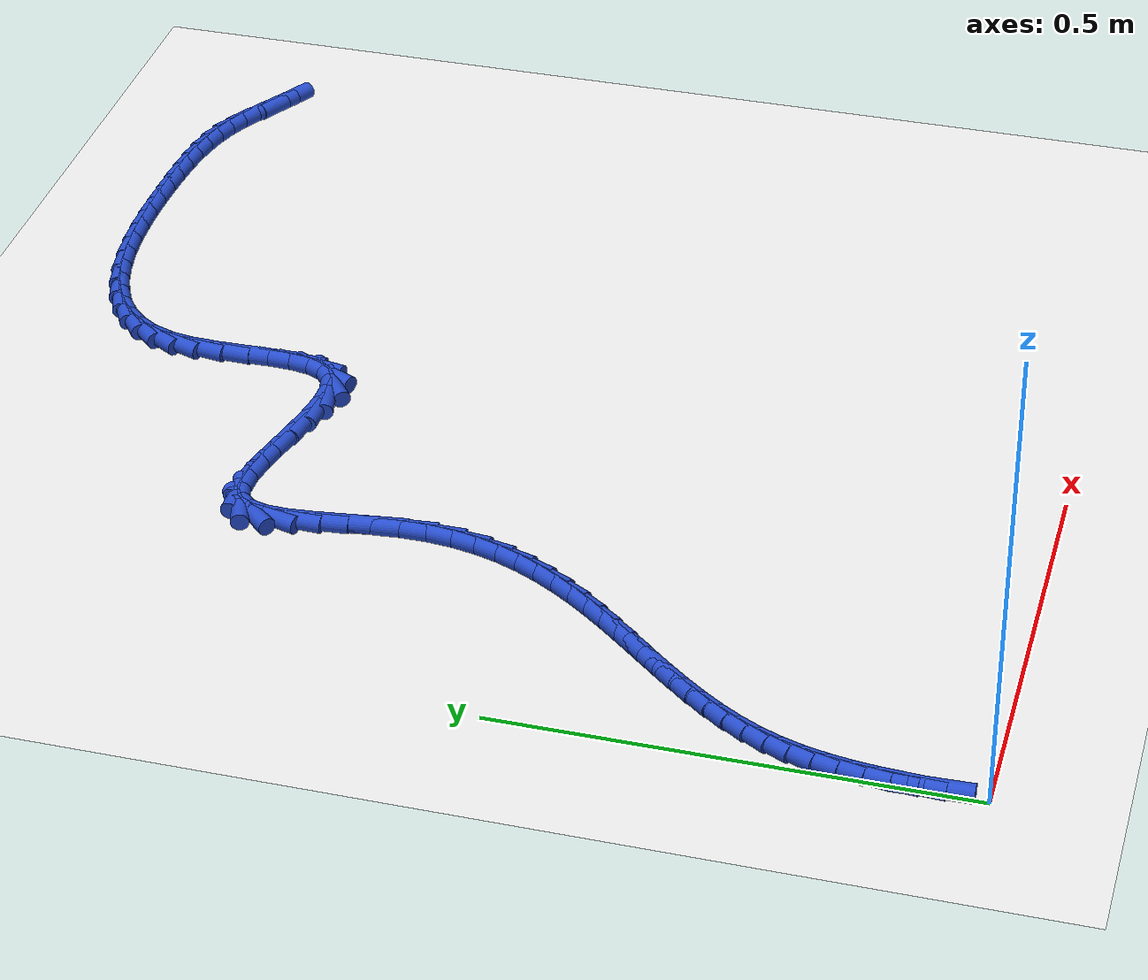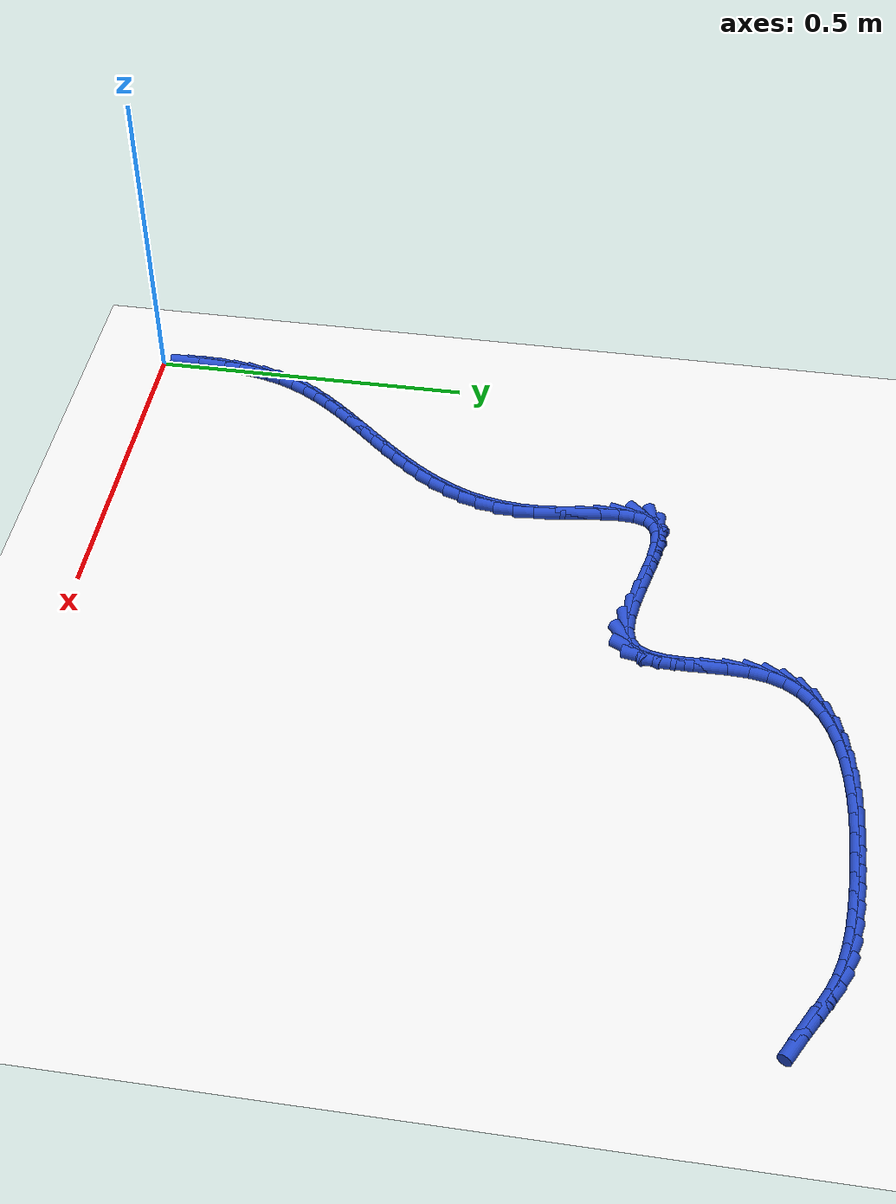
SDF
<sdf version="1.6">
 <world name="default">
  <model name="ground_plane">
   <static>1</static>
   <link name="link">
    <collision name="collision">
     <geometry><plane><normal>0 0 1</normal><size>100 100</size></plane></geometry>
     <surface><friction><ode><mu>100</mu><mu2>50</mu2></ode></friction></surface>
    </collision>
    <visual name="visual">
     <cast_shadows>0</cast_shadows>
     <geometry><plane><normal>0 0 1</normal><size>100 100</size></plane></geometry>
     <material>
      <script><uri>file://media/materials/scripts/gazebo.material</uri><name>Gazebo/WhiteGlow</name></script>
     </material>
    </visual>
   </link>
  </model>
  <model name="line">
   <link name="link_3">
    <pose>-0.0008582868187953234 0.07962597044792816 0.01 0 1.57 1.5166113316829752</pose>
    <collision name="collision">
     <geometry><cylinder><radius>0.01</radius><length>0.08</length></cylinder></geometry>
    </collision>
    <visual name="visual">
     <material>
      <script><name>Gazebo/Blue</name><uri>file://media/materials/scripts/gazebo.material</uri></script>
     </material>
     <geometry><cylinder><radius>0.01</radius><length>0.08</length></cylinder></geometry>
    </visual>
   </link>
   <link name="link_4">
    <pose>0.0005741074411347346 0.10603535074692257 0.01 0 1.57 1.4701500390305338</pose>
    <collision name="collision">
     <geometry><cylinder><radius>0.01</radius><length>0.08</length></cylinder></geometry>
    </collision>
    <visual name="visual">
     <material>
      <script><name>Gazebo/Blue</name><uri>file://media/materials/scripts/gazebo.material</uri></script>
     </material>
     <geometry><cylinder><radius>0.01</radius><length>0.08</length></cylinder></geometry>
    </visual>
   </link>
   <link name="link_5">
    <pose>0.0032087198866388926 0.13212384906799385 0.01 0 1.57 1.4142644829705298</pose>
    <collision name="collision">
     <geometry><cylinder><radius>0.01</radius><length>0.08</length></cylinder></geometry>
    </collision>
    <visual name="visual">
     <material>
      <script><name>Gazebo/Blue</name><uri>file://media/materials/scripts/gazebo.material</uri></script>
     </material>
     <geometry><cylinder><radius>0.01</radius><length>0.08</length></cylinder></geometry>
    </visual>
   </link>
   <link name="link_6">
    <pose>0.007251334469203062 0.15773871917948254 0.01 0 1.57 1.3481876121108494</pose>
    <collision name="collision">
     <geometry><cylinder><radius>0.01</radius><length>0.08</length></cylinder></geometry>
    </collision>
    <visual name="visual">
     <material>
      <script><name>Gazebo/Blue</name><uri>file://media/materials/scripts/gazebo.material</uri></script>
     </material>
     <geometry><cylinder><radius>0.01</radius><length>0.08</length></cylinder></geometry>
    </visual>
   </link>
   <link name="link_7">
    <pose>0.012907735140313155 0.18272721484972923 0.01 0 1.57 1.2712814550850546</pose>
    <collision name="collision">
     <geometry><cylinder><radius>0.01</radius><length>0.08</length></cylinder></geometry>
    </collision>
    <visual name="visual">
     <material>
      <script><name>Gazebo/Blue</name><uri>file://media/materials/scripts/gazebo.material</uri></script>
     </material>
     <geometry><cylinder><radius>0.01</radius><length>0.08</length></cylinder></geometry>
    </visual>
   </link>
   <link name="link_8">
    <pose>0.020383705851455082 0.20693658984707458 0.01 0 1.57 1.1843087087483664</pose>
    <collision name="collision">
     <geometry><cylinder><radius>0.01</radius><length>0.08</length></cylinder></geometry>
    </collision>
    <visual name="visual">
     <material>
      <script><name>Gazebo/Blue</name><uri>file://media/materials/scripts/gazebo.material</uri></script>
     </material>
     <geometry><cylinder><radius>0.01</radius><length>0.08</length></cylinder></geometry>
    </visual>
   </link>
   <link name="link_9">
    <pose>0.02986229865533491 0.23022809304915437 0.01 0 1.57 1.1003042329888846</pose>
    <collision name="collision">
     <geometry><cylinder><radius>0.01</radius><length>0.08</length></cylinder></geometry>
    </collision>
    <visual name="visual">
     <material>
      <script><name>Gazebo/Blue</name><uri>file://media/materials/scripts/gazebo.material</uri></script>
     </material>
     <geometry><cylinder><radius>0.01</radius><length>0.08</length></cylinder></geometry>
    </visual>
   </link>
   <link name="link_10">
    <pose>0.04125550205563197 0.25262985618097883 0.01 0 1.57 1.028621788836884</pose>
    <collision name="collision">
     <geometry><cylinder><radius>0.01</radius><length>0.08</length></cylinder></geometry>
    </collision>
    <visual name="visual">
     <material>
      <script><name>Gazebo/Blue</name><uri>file://media/materials/scripts/gazebo.material</uri></script>
     </material>
     <geometry><cylinder><radius>0.01</radius><length>0.08</length></cylinder></geometry>
    </visual>
   </link>
   <link name="link_11">
    <pose>0.05429713827067271 0.2742797007326057 0.01 0 1.57 0.9698861675975531</pose>
    <collision name="collision">
     <geometry><cylinder><radius>0.01</radius><length>0.08</length></cylinder></geometry>
    </collision>
    <visual name="visual">
     <material>
      <script><name>Gazebo/Blue</name><uri>file://media/materials/scripts/gazebo.material</uri></script>
     </material>
     <geometry><cylinder><radius>0.01</radius><length>0.08</length></cylinder></geometry>
    </visual>
   </link>
   <link name="link_12">
    <pose>0.0687179088689758 0.29531736945177367 0.01 0 1.57 0.9239835486995319</pose>
    <collision name="collision">
     <geometry><cylinder><radius>0.01</radius><length>0.08</length></cylinder></geometry>
    </collision>
    <visual name="visual">
     <material>
      <script><name>Gazebo/Blue</name><uri>file://media/materials/scripts/gazebo.material</uri></script>
     </material>
     <geometry><cylinder><radius>0.01</radius><length>0.08</length></cylinder></geometry>
    </visual>
   </link>
   <link name="link_13">
    <pose>0.08424851541906003 0.3158826050862217 0.01 0 1.57 0.8905015614335788</pose>
    <collision name="collision">
     <geometry><cylinder><radius>0.01</radius><length>0.08</length></cylinder></geometry>
    </collision>
    <visual name="visual">
     <material>
      <script><name>Gazebo/Blue</name><uri>file://media/materials/scripts/gazebo.material</uri></script>
     </material>
     <geometry><cylinder><radius>0.01</radius><length>0.08</length></cylinder></geometry>
    </visual>
   </link>
   <link name="link_14">
    <pose>0.10061965948944408 0.33611515038368833 0.01 0 1.57 0.8689524665879704</pose>
    <collision name="collision">
     <geometry><cylinder><radius>0.01</radius><length>0.08</length></cylinder></geometry>
    </collision>
    <visual name="visual">
     <material>
      <script><name>Gazebo/Blue</name><uri>file://media/materials/scripts/gazebo.material</uri></script>
     </material>
     <geometry><cylinder><radius>0.01</radius><length>0.08</length></cylinder></geometry>
    </visual>
   </link>
   <link name="link_15">
    <pose>0.11756204264864668 0.3561547480919124 0.01 0 1.57 0.8589161430688081</pose>
    <collision name="collision">
     <geometry><cylinder><radius>0.01</radius><length>0.08</length></cylinder></geometry>
    </collision>
    <visual name="visual">
     <material>
      <script><name>Gazebo/Blue</name><uri>file://media/materials/scripts/gazebo.material</uri></script>
     </material>
     <geometry><cylinder><radius>0.01</radius><length>0.08</length></cylinder></geometry>
    </visual>
   </link>
   <link name="link_16">
    <pose>0.13480636646518654 0.3761411409586327 0.01 0 1.57 0.8601175002567543</pose>
    <collision name="collision">
     <geometry><cylinder><radius>0.01</radius><length>0.08</length></cylinder></geometry>
    </collision>
    <visual name="visual">
     <material>
      <script><name>Gazebo/Blue</name><uri>file://media/materials/scripts/gazebo.material</uri></script>
     </material>
     <geometry><cylinder><radius>0.01</radius><length>0.08</length></cylinder></geometry>
    </visual>
   </link>
   <link name="link_17">
    <pose>0.15208333250758235 0.39621407173158774 0.01 0 1.57 0.8724551031376572</pose>
    <collision name="collision">
     <geometry><cylinder><radius>0.01</radius><length>0.08</length></cylinder></geometry>
    </collision>
    <visual name="visual">
     <material>
      <script><name>Gazebo/Blue</name><uri>file://media/materials/scripts/gazebo.material</uri></script>
     </material>
     <geometry><cylinder><radius>0.01</radius><length>0.08</length></cylinder></geometry>
    </visual>
   </link>
   <link name="link_18">
    <pose>0.1691236423443529 0.41651328315851643 0.01 0 1.57 0.8959914375994646</pose>
    <collision name="collision">
     <geometry><cylinder><radius>0.01</radius><length>0.08</length></cylinder></geometry>
    </collision>
    <visual name="visual">
     <material>
      <script><name>Gazebo/Blue</name><uri>file://media/materials/scripts/gazebo.material</uri></script>
     </material>
     <geometry><cylinder><radius>0.01</radius><length>0.08</length></cylinder></geometry>
    </visual>
   </link>
   <link name="link_19">
    <pose>0.18565799754401682 0.43717851798715757 0.01 0 1.57 0.9309068245905547</pose>
    <collision name="collision">
     <geometry><cylinder><radius>0.01</radius><length>0.08</length></cylinder></geometry>
    </collision>
    <visual name="visual">
     <material>
      <script><name>Gazebo/Blue</name><uri>file://media/materials/scripts/gazebo.material</uri></script>
     </material>
     <geometry><cylinder><radius>0.01</radius><length>0.08</length></cylinder></geometry>
    </visual>
   </link>
   <link name="link_20">
    <pose>0.20141709967509303 0.4583495189652499 0.01 0 1.57 0.9774118242091248</pose>
    <collision name="collision">
     <geometry><cylinder><radius>0.01</radius><length>0.08</length></cylinder></geometry>
    </collision>
    <visual name="visual">
     <material>
      <script><name>Gazebo/Blue</name><uri>file://media/materials/scripts/gazebo.material</uri></script>
     </material>
     <geometry><cylinder><radius>0.01</radius><length>0.08</length></cylinder></geometry>
    </visual>
   </link>
   <link name="link_21">
    <pose>0.2161316503061 0.480166028840532 0.01 0 1.57 1.0356099639411565</pose>
    <collision name="collision">
     <geometry><cylinder><radius>0.01</radius><length>0.08</length></cylinder></geometry>
    </collision>
    <visual name="visual">
     <material>
      <script><name>Gazebo/Blue</name><uri>file://media/materials/scripts/gazebo.material</uri></script>
     </material>
     <geometry><cylinder><radius>0.01</radius><length>0.08</length></cylinder></geometry>
    </visual>
   </link>
   <link name="link_22">
    <pose>0.22953235100555655 0.5027677903607427 0.01 0 1.57 1.1053082781964698</pose>
    <collision name="collision">
     <geometry><cylinder><radius>0.01</radius><length>0.08</length></cylinder></geometry>
    </collision>
    <visual name="visual">
     <material>
      <script><name>Gazebo/Blue</name><uri>file://media/materials/scripts/gazebo.material</uri></script>
     </material>
     <geometry><cylinder><radius>0.01</radius><length>0.08</length></cylinder></geometry>
    </visual>
   </link>
   <link name="link_23">
    <pose>0.2413499033419814 0.5262945462736206 0.01 0 1.57 1.1857931498995955</pose>
    <collision name="collision">
     <geometry><cylinder><radius>0.01</radius><length>0.08</length></cylinder></geometry>
    </collision>
    <visual name="visual">
     <material>
      <script><name>Gazebo/Blue</name><uri>file://media/materials/scripts/gazebo.material</uri></script>
     </material>
     <geometry><cylinder><radius>0.01</radius><length>0.08</length></cylinder></geometry>
    </visual>
   </link>
   <link name="link_24">
    <pose>0.2513150088838933 0.5508860393269048 0.01 0 1.57 1.2756247281346937</pose>
    <collision name="collision">
     <geometry><cylinder><radius>0.01</radius><length>0.08</length></cylinder></geometry>
    </collision>
    <visual name="visual">
     <material>
      <script><name>Gazebo/Blue</name><uri>file://media/materials/scripts/gazebo.material</uri></script>
     </material>
     <geometry><cylinder><radius>0.01</radius><length>0.08</length></cylinder></geometry>
    </visual>
   </link>
   <link name="link_25">
    <pose>0.259158369199811 0.5766820122683338 0.01 0 1.57 1.372540796333877</pose>
    <collision name="collision">
     <geometry><cylinder><radius>0.01</radius><length>0.08</length></cylinder></geometry>
    </collision>
    <visual name="visual">
     <material>
      <script><name>Gazebo/Blue</name><uri>file://media/materials/scripts/gazebo.material</uri></script>
     </material>
     <geometry><cylinder><radius>0.01</radius><length>0.08</length></cylinder></geometry>
    </visual>
   </link>
   <link name="link_26">
    <pose>0.26461068585825315 0.6038222078456463 0.01 0 1.57 1.4735648093288154</pose>
    <collision name="collision">
     <geometry><cylinder><radius>0.01</radius><length>0.08</length></cylinder></geometry>
    </collision>
    <visual name="visual">
     <material>
      <script><name>Gazebo/Blue</name><uri>file://media/materials/scripts/gazebo.material</uri></script>
     </material>
     <geometry><cylinder><radius>0.01</radius><length>0.08</length></cylinder></geometry>
    </visual>
   </link>
   <link name="link_27">
    <pose>0.2674026604277384 0.6324463688065811 0.01 0 1.57 -1.5663842565983226</pose>
    <collision name="collision">
     <geometry><cylinder><radius>0.01</radius><length>0.08</length></cylinder></geometry>
    </collision>
    <visual name="visual">
     <material>
      <script><name>Gazebo/Blue</name><uri>file://media/materials/scripts/gazebo.material</uri></script>
     </material>
     <geometry><cylinder><radius>0.01</radius><length>0.08</length></cylinder></geometry>
    </visual>
   </link>
   <link name="link_28">
    <pose>0.2672692192843914 0.6626907374429276 0.01 0 1.57 -1.4828766486269551</pose>
    <collision name="collision">
     <geometry><cylinder><radius>0.01</radius><length>0.08</length></cylinder></geometry>
    </collision>
    <visual name="visual">
     <material>
      <script><name>Gazebo/Blue</name><uri>file://media/materials/scripts/gazebo.material</uri></script>
     </material>
     <geometry><cylinder><radius>0.01</radius><length>0.08</length></cylinder></geometry>
    </visual>
   </link>
   <link name="link_29">
    <pose>0.26448808860806705 0.69424182034737 0.01 0 1.57 -1.442635872046809</pose>
    <collision name="collision">
     <geometry><cylinder><radius>0.01</radius><length>0.08</length></cylinder></geometry>
    </collision>
    <visual name="visual">
     <material>
      <script><name>Gazebo/Blue</name><uri>file://media/materials/scripts/gazebo.material</uri></script>
     </material>
     <geometry><cylinder><radius>0.01</radius><length>0.08</length></cylinder></geometry>
    </visual>
   </link>
   <link name="link_30">
    <pose>0.2604086300167814 0.725898222699114 0.01 0 1.57 -1.443345490882644</pose>
    <collision name="collision">
     <geometry><cylinder><radius>0.01</radius><length>0.08</length></cylinder></geometry>
    </collision>
    <visual name="visual">
     <material>
      <script><name>Gazebo/Blue</name><uri>file://media/materials/scripts/gazebo.material</uri></script>
     </material>
     <geometry><cylinder><radius>0.01</radius><length>0.08</length></cylinder></geometry>
    </visual>
   </link>
   <link name="link_31">
    <pose>0.2565057982388003 0.7563544897553595 0.01 0 1.57 -1.4904261472061475</pose>
    <collision name="collision">
     <geometry><cylinder><radius>0.01</radius><length>0.08</length></cylinder></geometry>
    </collision>
    <visual name="visual">
     <material>
      <script><name>Gazebo/Blue</name><uri>file://media/materials/scripts/gazebo.material</uri></script>
     </material>
     <geometry><cylinder><radius>0.01</radius><length>0.08</length></cylinder></geometry>
    </visual>
   </link>
   <link name="link_32">
    <pose>0.2542545480023896 0.7843051667733064 0.01 0 1.57 1.534552910283694</pose>
    <collision name="collision">
     <geometry><cylinder><radius>0.01</radius><length>0.08</length></cylinder></geometry>
    </collision>
    <visual name="visual">
     <material>
      <script><name>Gazebo/Blue</name><uri>file://media/materials/scripts/gazebo.material</uri></script>
     </material>
     <geometry><cylinder><radius>0.01</radius><length>0.08</length></cylinder></geometry>
    </visual>
   </link>
   <link name="link_33">
    <pose>0.2551298340358152 0.8084447990101546 0.01 0 1.57 1.2904762506047198</pose>
    <collision name="collision">
     <geometry><cylinder><radius>0.01</radius><length>0.08</length></cylinder></geometry>
    </collision>
    <visual name="visual">
     <material>
      <script><name>Gazebo/Blue</name><uri>file://media/materials/scripts/gazebo.material</uri></script>
     </material>
     <geometry><cylinder><radius>0.01</radius><length>0.08</length></cylinder></geometry>
    </visual>
   </link>
   <link name="link_34">
    <pose>0.2606066110673428 0.827467931723104 0.01 0 1.57 0.8289813421498567</pose>
    <collision name="collision">
     <geometry><cylinder><radius>0.01</radius><length>0.08</length></cylinder></geometry>
    </collision>
    <visual name="visual">
     <material>
      <script><name>Gazebo/Blue</name><uri>file://media/materials/scripts/gazebo.material</uri></script>
     </material>
     <geometry><cylinder><radius>0.01</radius><length>0.08</length></cylinder></geometry>
    </visual>
   </link>
   <link name="link_35">
    <pose>0.2721570786431589 0.840071788592008 0.01 0 1.57 0.2996460380054777</pose>
    <collision name="collision">
     <geometry><cylinder><radius>0.01</radius><length>0.08</length></cylinder></geometry>
    </collision>
    <visual name="visual">
     <material>
      <script><name>Gazebo/Blue</name><uri>file://media/materials/scripts/gazebo.material</uri></script>
     </material>
     <geometry><cylinder><radius>0.01</radius><length>0.08</length></cylinder></geometry>
    </visual>
   </link>
   <link name="link_36">
    <pose>0.29045881077669766 0.8457260805467023 0.01 0 1.57 0.0004749256121031723</pose>
    <collision name="collision">
     <geometry><cylinder><radius>0.01</radius><length>0.08</length></cylinder></geometry>
    </collision>
    <visual name="visual">
     <material>
      <script><name>Gazebo/Blue</name><uri>file://media/materials/scripts/gazebo.material</uri></script>
     </material>
     <geometry><cylinder><radius>0.01</radius><length>0.08</length></cylinder></geometry>
    </visual>
   </link>
   <link name="link_37">
    <pose>0.31429985446935593 0.8457374032698225 0.01 0 1.57 -0.1444653741208271</pose>
    <collision name="collision">
     <geometry><cylinder><radius>0.01</radius><length>0.08</length></cylinder></geometry>
    </collision>
    <visual name="visual">
     <material>
      <script><name>Gazebo/Blue</name><uri>file://media/materials/scripts/gazebo.material</uri></script>
     </material>
     <geometry><cylinder><radius>0.01</radius><length>0.08</length></cylinder></geometry>
    </visual>
   </link>
   <link name="link_38">
    <pose>0.34219348366471025 0.8416794703190987 0.01 0 1.57 -0.2119231707341669</pose>
    <collision name="collision">
     <geometry><cylinder><radius>0.01</radius><length>0.08</length></cylinder></geometry>
    </collision>
    <visual name="visual">
     <material>
      <script><name>Gazebo/Blue</name><uri>file://media/materials/scripts/gazebo.material</uri></script>
     </material>
     <geometry><cylinder><radius>0.01</radius><length>0.08</length></cylinder></geometry>
    </visual>
   </link>
   <link name="link_39">
    <pose>0.3726529723063379 0.835125995252261 0.01 0 1.57 -0.23272596432569825</pose>
    <collision name="collision">
     <geometry><cylinder><radius>0.01</radius><length>0.08</length></cylinder></geometry>
    </collision>
    <visual name="visual">
     <material>
      <script><name>Gazebo/Blue</name><uri>file://media/materials/scripts/gazebo.material</uri></script>
     </material>
     <geometry><cylinder><radius>0.01</radius><length>0.08</length></cylinder></geometry>
    </visual>
   </link>
   <link name="link_40">
    <pose>0.40419159433781526 0.8276506916270395 0.01 0 1.57 -0.21577169232652965</pose>
    <collision name="collision">
     <geometry><cylinder><radius>0.01</radius><length>0.08</length></cylinder></geometry>
    </collision>
    <visual name="visual">
     <material>
      <script><name>Gazebo/Blue</name><uri>file://media/materials/scripts/gazebo.material</uri></script>
     </material>
     <geometry><cylinder><radius>0.01</radius><length>0.08</length></cylinder></geometry>
    </visual>
   </link>
   <link name="link_41">
    <pose>0.4353226237027193 0.8208272730011645 0.01 0 1.57 -0.1559843534359159</pose>
    <collision name="collision">
     <geometry><cylinder><radius>0.01</radius><length>0.08</length></cylinder></geometry>
    </collision>
    <visual name="visual">
     <material>
      <script><name>Gazebo/Blue</name><uri>file://media/materials/scripts/gazebo.material</uri></script>
     </material>
     <geometry><cylinder><radius>0.01</radius><length>0.08</length></cylinder></geometry>
    </visual>
   </link>
   <link name="link_42">
    <pose>0.46455933434462693 0.816229452932366 0.01 0 1.57 -0.030873474198297505</pose>
    <collision name="collision">
     <geometry><cylinder><radius>0.01</radius><length>0.08</length></cylinder></geometry>
    </collision>
    <visual name="visual">
     <material>
      <script><name>Gazebo/Blue</name><uri>file://media/materials/scripts/gazebo.material</uri></script>
     </material>
     <geometry><cylinder><radius>0.01</radius><length>0.08</length></cylinder></geometry>
    </visual>
   </link>
   <link name="link_43">
    <pose>0.49041500020711426 0.8154309449783738 0.01 0 1.57 0.21460347535287516</pose>
    <collision name="collision">
     <geometry><cylinder><radius>0.01</radius><length>0.08</length></cylinder></geometry>
    </collision>
    <visual name="visual">
     <material>
      <script><name>Gazebo/Blue</name><uri>file://media/materials/scripts/gazebo.material</uri></script>
     </material>
     <geometry><cylinder><radius>0.01</radius><length>0.08</length></cylinder></geometry>
    </visual>
   </link>
   <link name="link_44">
    <pose>0.511402895233759 0.8200054626969184 0.01 0 1.57 0.6607189357446506</pose>
    <collision name="collision">
     <geometry><cylinder><radius>0.01</radius><length>0.08</length></cylinder></geometry>
    </collision>
    <visual name="visual">
     <material>
      <script><name>Gazebo/Blue</name><uri>file://media/materials/scripts/gazebo.material</uri></script>
     </material>
     <geometry><cylinder><radius>0.01</radius><length>0.08</length></cylinder></geometry>
    </visual>
   </link>
   <link name="link_45">
    <pose>0.5261187217249939 0.8314434497185448 0.01 0 1.57 1.1306768266454448</pose>
    <collision name="collision">
     <geometry><cylinder><radius>0.01</radius><length>0.08</length></cylinder></geometry>
    </collision>
    <visual name="visual">
     <material>
      <script><name>Gazebo/Blue</name><uri>file://media/materials/scripts/gazebo.material</uri></script>
     </material>
     <geometry><cylinder><radius>0.01</radius><length>0.08</length></cylinder></geometry>
    </visual>
   </link>
   <link name="link_46">
    <pose>0.5347039005766825 0.8496738497264652 0.01 0 1.57 1.4039304632642877</pose>
    <collision name="collision">
     <geometry><cylinder><radius>0.01</radius><length>0.08</length></cylinder></geometry>
    </collision>
    <visual name="visual">
     <material>
      <script><name>Gazebo/Blue</name><uri>file://media/materials/scripts/gazebo.material</uri></script>
     </material>
     <geometry><cylinder><radius>0.01</radius><length>0.08</length></cylinder></geometry>
    </visual>
   </link>
   <link name="link_47">
    <pose>0.5386729427292178 0.8732384974963888 0.01 0 1.57 1.5373993321435813</pose>
    <collision name="collision">
     <geometry><cylinder><radius>0.01</radius><length>0.08</length></cylinder></geometry>
    </collision>
    <visual name="visual">
     <material>
      <script><name>Gazebo/Blue</name><uri>file://media/materials/scripts/gazebo.material</uri></script>
     </material>
     <geometry><cylinder><radius>0.01</radius><length>0.08</length></cylinder></geometry>
    </visual>
   </link>
   <link name="link_48">
    <pose>0.5395881099100085 0.9006309894949102 0.01 0 1.57 -1.5513989023679933</pose>
    <collision name="collision">
     <geometry><cylinder><radius>0.01</radius><length>0.08</length></cylinder></geometry>
    </collision>
    <visual name="visual">
     <material>
      <script><name>Gazebo/Blue</name><uri>file://media/materials/scripts/gazebo.material</uri></script>
     </material>
     <geometry><cylinder><radius>0.01</radius><length>0.08</length></cylinder></geometry>
    </visual>
   </link>
   <link name="link_49">
    <pose>0.5390116638464629 0.9303449221886234 0.01 0 1.57 -1.5542300518301515</pose>
    <collision name="collision">
     <geometry><cylinder><radius>0.01</radius><length>0.08</length></cylinder></geometry>
    </collision>
    <visual name="visual">
     <material>
      <script><name>Gazebo/Blue</name><uri>file://media/materials/scripts/gazebo.material</uri></script>
     </material>
     <geometry><cylinder><radius>0.01</radius><length>0.08</length></cylinder></geometry>
    </visual>
   </link>
   <link name="link_50">
    <pose>0.5385058662659898 0.9608738920441238 0.01 0 1.57 1.5330393742134707</pose>
    <collision name="collision">
     <geometry><cylinder><radius>0.01</radius><length>0.08</length></cylinder></geometry>
    </collision>
    <visual name="visual">
     <material>
      <script><name>Gazebo/Blue</name><uri>file://media/materials/scripts/gazebo.material</uri></script>
     </material>
     <geometry><cylinder><radius>0.01</radius><length>0.08</length></cylinder></geometry>
    </visual>
   </link>
   <link name="link_51">
    <pose>0.5396329788959975 0.9907114955280049 0.01 0 1.57 1.4156758449845734</pose>
    <collision name="collision">
     <geometry><cylinder><radius>0.01</radius><length>0.08</length></cylinder></geometry>
    </collision>
    <visual name="visual">
     <material>
      <script><name>Gazebo/Blue</name><uri>file://media/materials/scripts/gazebo.material</uri></script>
     </material>
     <geometry><cylinder><radius>0.01</radius><length>0.08</length></cylinder></geometry>
    </visual>
   </link>
   <link name="link_52">
    <pose>0.5439552134179969 1.0183513726422542 0.01 0 1.57 1.2270328774771515</pose>
    <collision name="collision">
     <geometry><cylinder><radius>0.01</radius><length>0.08</length></cylinder></geometry>
    </collision>
    <visual name="visual">
     <material>
      <script><name>Gazebo/Blue</name><uri>file://media/materials/scripts/gazebo.material</uri></script>
     </material>
     <geometry><cylinder><radius>0.01</radius><length>0.08</length></cylinder></geometry>
    </visual>
   </link>
   <link name="link_53">
    <pose>0.5526450417346751 1.042626201647599 0.01 0 1.57 1.017795693699068</pose>
    <collision name="collision">
     <geometry><cylinder><radius>0.01</radius><length>0.08</length></cylinder></geometry>
    </collision>
    <visual name="visual">
     <material>
      <script><name>Gazebo/Blue</name><uri>file://media/materials/scripts/gazebo.material</uri></script>
     </material>
     <geometry><cylinder><radius>0.01</radius><length>0.08</length></cylinder></geometry>
    </visual>
   </link>
   <link name="link_54">
    <pose>0.5655450038613138 1.0635255809239053 0.01 0 1.57 0.8170722181826445</pose>
    <collision name="collision">
     <geometry><cylinder><radius>0.01</radius><length>0.08</length></cylinder></geometry>
    </collision>
    <visual name="visual">
     <material>
      <script><name>Gazebo/Blue</name><uri>file://media/materials/scripts/gazebo.material</uri></script>
     </material>
     <geometry><cylinder><radius>0.01</radius><length>0.08</length></cylinder></geometry>
    </visual>
   </link>
   <link name="link_55">
    <pose>0.5822142099452967 1.0812856671294306 0.01 0 1.57 0.6389661651674776</pose>
    <collision name="collision">
     <geometry><cylinder><radius>0.01</radius><length>0.08</length></cylinder></geometry>
    </collision>
    <visual name="visual">
     <material>
      <script><name>Gazebo/Blue</name><uri>file://media/materials/scripts/gazebo.material</uri></script>
     </material>
     <geometry><cylinder><radius>0.01</radius><length>0.08</length></cylinder></geometry>
    </visual>
   </link>
   <link name="link_56">
    <pose>0.6022117701340077 1.096142616922432 0.01 0 1.57 0.48943407880741896</pose>
    <collision name="collision">
     <geometry><cylinder><radius>0.01</radius><length>0.08</length></cylinder></geometry>
    </collision>
    <visual name="visual">
     <material>
      <script><name>Gazebo/Blue</name><uri>file://media/materials/scripts/gazebo.material</uri></script>
     </material>
     <geometry><cylinder><radius>0.01</radius><length>0.08</length></cylinder></geometry>
    </visual>
   </link>
   <link name="link_57">
    <pose>0.6250967945748307 1.108332586961167 0.01 0 1.57 0.3677316555457081</pose>
    <collision name="collision">
     <geometry><cylinder><radius>0.01</radius><length>0.08</length></cylinder></geometry>
    </collision>
    <visual name="visual">
     <material>
      <script><name>Gazebo/Blue</name><uri>file://media/materials/scripts/gazebo.material</uri></script>
     </material>
     <geometry><cylinder><radius>0.01</radius><length>0.08</length></cylinder></geometry>
    </visual>
   </link>
   <link name="link_58">
    <pose>0.6504283934151496 1.1180917339038925 0.01 0 1.57 0.2699546364870247</pose>
    <collision name="collision">
     <geometry><cylinder><radius>0.01</radius><length>0.08</length></cylinder></geometry>
    </collision>
    <visual name="visual">
     <material>
      <script><name>Gazebo/Blue</name><uri>file://media/materials/scripts/gazebo.material</uri></script>
     </material>
     <geometry><cylinder><radius>0.01</radius><length>0.08</length></cylinder></geometry>
    </visual>
   </link>
   <link name="link_59">
    <pose>0.677765676802348 1.125656214408866 0.01 0 1.57 0.19158530284460423</pose>
    <collision name="collision">
     <geometry><cylinder><radius>0.01</radius><length>0.08</length></cylinder></geometry>
    </collision>
    <visual name="visual">
     <material>
      <script><name>Gazebo/Blue</name><uri>file://media/materials/scripts/gazebo.material</uri></script>
     </material>
     <geometry><cylinder><radius>0.01</radius><length>0.08</length></cylinder></geometry>
    </visual>
   </link>
   <link name="link_60">
    <pose>0.7066677548838103 1.131262185134345 0.01 0 1.57 0.1286277842384979</pose>
    <collision name="collision">
     <geometry><cylinder><radius>0.01</radius><length>0.08</length></cylinder></geometry>
    </collision>
    <visual name="visual">
     <material>
      <script><name>Gazebo/Blue</name><uri>file://media/materials/scripts/gazebo.material</uri></script>
     </material>
     <geometry><cylinder><radius>0.01</radius><length>0.08</length></cylinder></geometry>
    </visual>
   </link>
   <link name="link_61">
    <pose>0.7366937378069199 1.1351458027385861 0.01 0 1.57 0.07791098571765774</pose>
    <collision name="collision">
     <geometry><cylinder><radius>0.01</radius><length>0.08</length></cylinder></geometry>
    </collision>
    <visual name="visual">
     <material>
      <script><name>Gazebo/Blue</name><uri>file://media/materials/scripts/gazebo.material</uri></script>
     </material>
     <geometry><cylinder><radius>0.01</radius><length>0.08</length></cylinder></geometry>
    </visual>
   </link>
   <link name="link_62">
    <pose>0.7674027357190609 1.1375432238798475 0.01 0 1.57 0.03705378234773313</pose>
    <collision name="collision">
     <geometry><cylinder><radius>0.01</radius><length>0.08</length></cylinder></geometry>
    </collision>
    <visual name="visual">
     <material>
      <script><name>Gazebo/Blue</name><uri>file://media/materials/scripts/gazebo.material</uri></script>
     </material>
     <geometry><cylinder><radius>0.01</radius><length>0.08</length></cylinder></geometry>
    </visual>
   </link>
   <link name="link_63">
    <pose>0.7983538587676173 1.1386906052163857 0.01 0 1.57 0.0043410443534745765</pose>
    <collision name="collision">
     <geometry><cylinder><radius>0.01</radius><length>0.08</length></cylinder></geometry>
    </collision>
    <visual name="visual">
     <material>
      <script><name>Gazebo/Blue</name><uri>file://media/materials/scripts/gazebo.material</uri></script>
     </material>
     <geometry><cylinder><radius>0.01</radius><length>0.08</length></cylinder></geometry>
    </visual>
   </link>
   <link name="link_64">
    <pose>0.8291062170999728 1.1388241034064577 0.01 0 1.57 -0.021390641059624214</pose>
    <collision name="collision">
     <geometry><cylinder><radius>0.01</radius><length>0.08</length></cylinder></geometry>
    </collision>
    <visual name="visual">
     <material>
      <script><name>Gazebo/Blue</name><uri>file://media/materials/scripts/gazebo.material</uri></script>
     </material>
     <geometry><cylinder><radius>0.01</radius><length>0.08</length></cylinder></geometry>
    </visual>
   </link>
   <link name="link_65">
    <pose>0.8592189208635113 1.1381798751083216 0.01 0 1.57 -0.04193806316624282</pose>
    <collision name="collision">
     <geometry><cylinder><radius>0.01</radius><length>0.08</length></cylinder></geometry>
    </collision>
    <visual name="visual">
     <material>
      <script><name>Gazebo/Blue</name><uri>file://media/materials/scripts/gazebo.material</uri></script>
     </material>
     <geometry><cylinder><radius>0.01</radius><length>0.08</length></cylinder></geometry>
    </visual>
   </link>
   <link name="link_66">
    <pose>0.8882778101295206 1.1369604866036076 0.01 0 1.57 -0.06831897836503452</pose>
    <collision name="collision">
     <geometry><cylinder><radius>0.01</radius><length>0.08</length></cylinder></geometry>
    </collision>
    <visual name="visual">
     <material>
      <script><name>Gazebo/Blue</name><uri>file://media/materials/scripts/gazebo.material</uri></script>
     </material>
     <geometry><cylinder><radius>0.01</radius><length>0.08</length></cylinder></geometry>
    </visual>
   </link>
   <link name="link_67">
    <pose>0.9161177829901833 1.1350555233830575 0.01 0 1.57 -0.10756076932836463</pose>
    <collision name="collision">
     <geometry><cylinder><radius>0.01</radius><length>0.08</length></cylinder></geometry>
    </collision>
    <visual name="visual">
     <material>
      <script><name>Gazebo/Blue</name><uri>file://media/materials/scripts/gazebo.material</uri></script>
     </material>
     <geometry><cylinder><radius>0.01</radius><length>0.08</length></cylinder></geometry>
    </visual>
   </link>
   <link name="link_68">
    <pose>0.9427092803237068 1.1321842399911701 0.01 0 1.57 -0.16133808008794162</pose>
    <collision name="collision">
     <geometry><cylinder><radius>0.01</radius><length>0.08</length></cylinder></geometry>
    </collision>
    <visual name="visual">
     <material>
      <script><name>Gazebo/Blue</name><uri>file://media/materials/scripts/gazebo.material</uri></script>
     </material>
     <geometry><cylinder><radius>0.01</radius><length>0.08</length></cylinder></geometry>
    </visual>
   </link>
   <link name="link_69">
    <pose>0.9680241005581061 1.1280641849964166 0.01 0 1.57 -0.23116485977365064</pose>
    <collision name="collision">
     <geometry><cylinder><radius>0.01</radius><length>0.08</length></cylinder></geometry>
    </collision>
    <visual name="visual">
     <material>
      <script><name>Gazebo/Blue</name><uri>file://media/materials/scripts/gazebo.material</uri></script>
     </material>
     <geometry><cylinder><radius>0.01</radius><length>0.08</length></cylinder></geometry>
    </visual>
   </link>
   <link name="link_70">
    <pose>0.9920340421213966 1.1224129069672686 0.01 0 1.57 -0.3180152008030883</pose>
    <collision name="collision">
     <geometry><cylinder><radius>0.01</radius><length>0.08</length></cylinder></geometry>
    </collision>
    <visual name="visual">
     <material>
      <script><name>Gazebo/Blue</name><uri>file://media/materials/scripts/gazebo.material</uri></script>
     </material>
     <geometry><cylinder><radius>0.01</radius><length>0.08</length></cylinder></geometry>
    </visual>
   </link>
   <link name="link_71">
    <pose>1.0147109034415942 1.1149479544721979 0.01 0 1.57 -0.41819017896109345</pose>
    <collision name="collision">
     <geometry><cylinder><radius>0.01</radius><length>0.08</length></cylinder></geometry>
    </collision>
    <visual name="visual">
     <material>
      <script><name>Gazebo/Blue</name><uri>file://media/materials/scripts/gazebo.material</uri></script>
     </material>
     <geometry><cylinder><radius>0.01</radius><length>0.08</length></cylinder></geometry>
    </visual>
   </link>
   <link name="link_72">
    <pose>1.0360757871048465 1.1054533243558418 0.01 0 1.57 -0.4987269559054551</pose>
    <collision name="collision">
     <geometry><cylinder><radius>0.01</radius><length>0.08</length></cylinder></geometry>
    </collision>
    <visual name="visual">
     <material>
      <script><name>Gazebo/Blue</name><uri>file://media/materials/scripts/gazebo.material</uri></script>
     </material>
     <geometry><cylinder><radius>0.01</radius><length>0.08</length></cylinder></geometry>
    </visual>
   </link>
   <link name="link_73">
    <pose>1.0565762387082873 1.0942877398964 0.01 0 1.57 -0.5404997946324268</pose>
    <collision name="collision">
     <geometry><cylinder><radius>0.01</radius><length>0.08</length></cylinder></geometry>
    </collision>
    <visual name="visual">
     <material>
      <script><name>Gazebo/Blue</name><uri>file://media/materials/scripts/gazebo.material</uri></script>
     </material>
     <geometry><cylinder><radius>0.01</radius><length>0.08</length></cylinder></geometry>
    </visual>
   </link>
   <link name="link_74">
    <pose>1.076878243362914 1.0821043200111564 0.01 0 1.57 -0.5433510634614989</pose>
    <collision name="collision">
     <geometry><cylinder><radius>0.01</radius><length>0.08</length></cylinder></geometry>
    </collision>
    <visual name="visual">
     <material>
      <script><name>Gazebo/Blue</name><uri>file://media/materials/scripts/gazebo.material</uri></script>
     </material>
     <geometry><cylinder><radius>0.01</radius><length>0.08</length></cylinder></geometry>
    </visual>
   </link>
   <link name="link_75">
    <pose>1.097649557917581 1.069558571426675 0.01 0 1.57 -0.5099279092797003</pose>
    <collision name="collision">
     <geometry><cylinder><radius>0.01</radius><length>0.08</length></cylinder></geometry>
    </collision>
    <visual name="visual">
     <material>
      <script><name>Gazebo/Blue</name><uri>file://media/materials/scripts/gazebo.material</uri></script>
     </material>
     <geometry><cylinder><radius>0.01</radius><length>0.08</length></cylinder></geometry>
    </visual>
   </link>
   <link name="link_292">
    <pose>-0.001575406124585206 0.05332672024113036 0.01 0 1.57 -1.541262388842933</pose>
    <collision name="collision">
     <geometry><cylinder><radius>0.01</radius><length>0.08</length></cylinder></geometry>
    </collision>
    <visual name="visual">
     <material>
      <script><name>Gazebo/Blue</name><uri>file://media/materials/scripts/gazebo.material</uri></script>
     </material>
     <geometry><cylinder><radius>0.01</radius><length>0.08</length></cylinder></geometry>
    </visual>
   </link>
  </model>
 </world>
</sdf>
